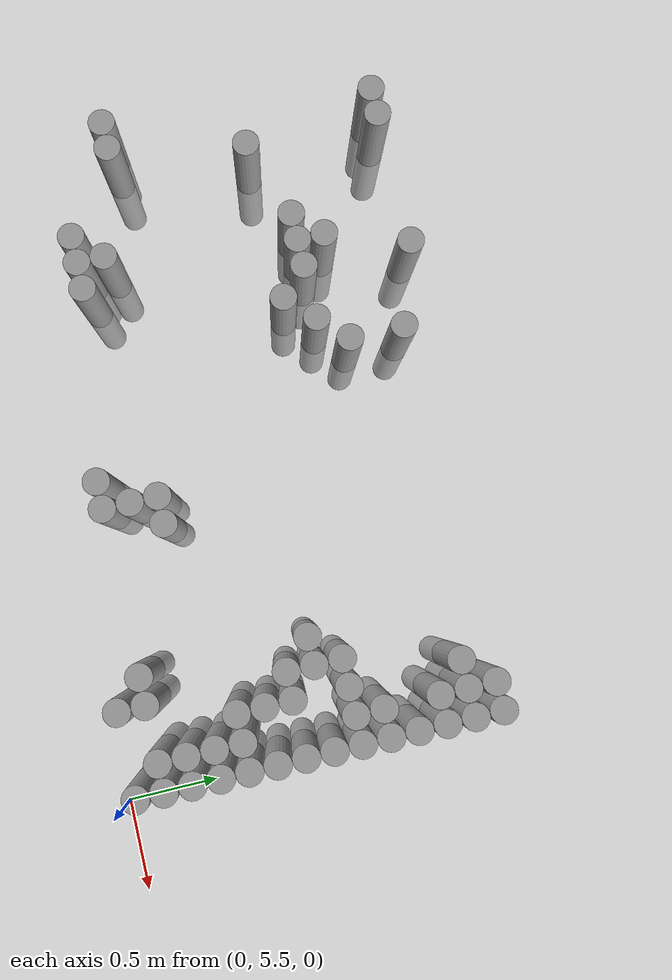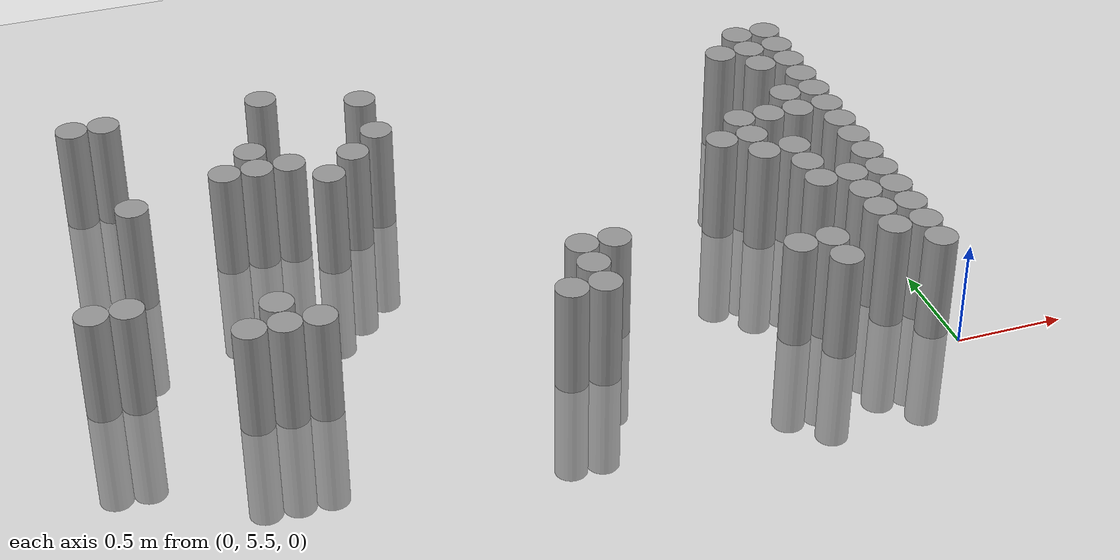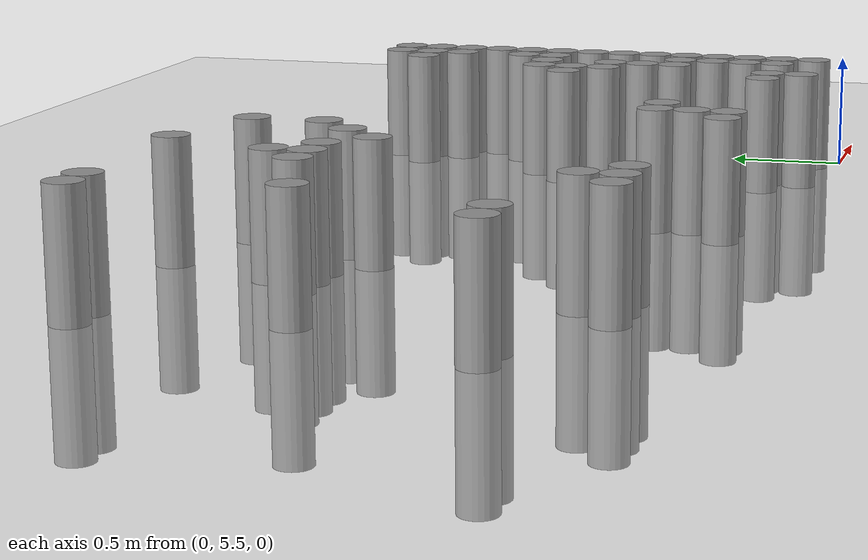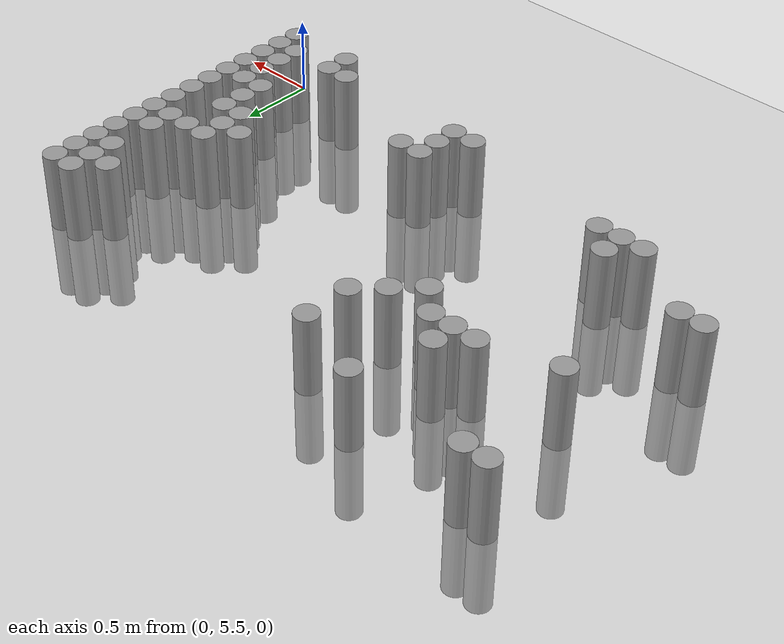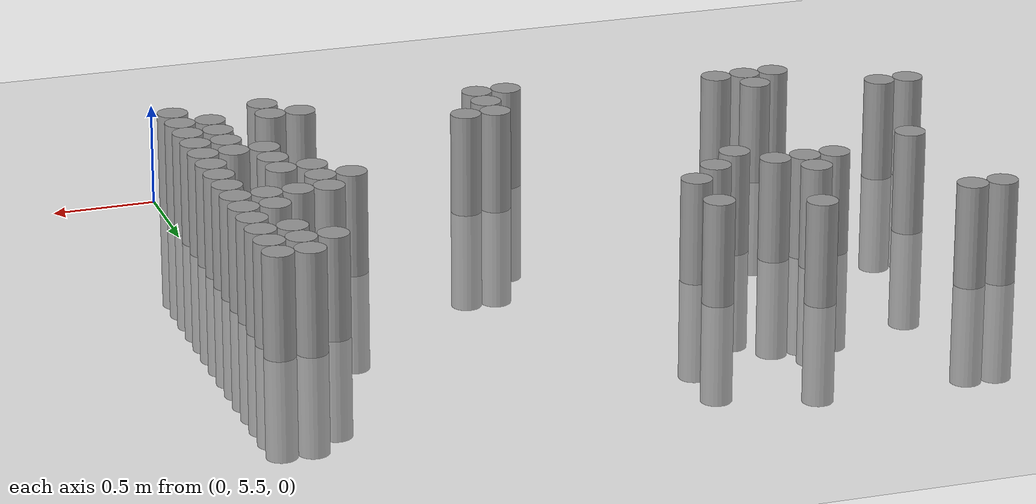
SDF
<sdf version="1.6">
 <world name="default">
  <model name="ground_plane">
   <static>1</static>
   <static>1</static>
   <link name="link">
    <collision name="collision">
     <geometry><plane><normal>0 0 1</normal><size>100 100</size></plane></geometry>
     <surface><friction><ode><mu>100</mu><mu2>50</mu2></ode></friction></surface>
    </collision>
    <visual name="visual">
     <cast_shadows>0</cast_shadows>
     <geometry><plane><normal>0 0 1</normal><size>100 100</size></plane></geometry>
     <material>
      <script><uri>file://media/materials/scripts/gazebo.material</uri><name>Gazebo/Grey</name></script>
     </material>
    </visual>
   </link>
  </model>
  <model name="unit_cylinder_161">
   <static>1</static>
   <pose>-3.675000 6.225000 0.000000 0.000000 0.000000 0.000000</pose>
   <link name="link">
    <inertial>
     <mass>1</mass>
     <inertia><ixx>0.145833</ixx><ixy>0</ixy><ixz>0</ixz><iyy>0.145833</iyy><iyz>0</iyz><izz>0.125</izz></inertia>
    </inertial>
    <collision name="collision">
     <geometry><cylinder><radius>0.075000</radius><length>1</length></cylinder></geometry>
    </collision>
    <visual name="visual">
     <geometry><cylinder><radius>0.075000</radius><length>1</length></cylinder></geometry>
     <material>
      <script><name>Gazebo/Grey</name><uri>file://media/materials/scripts/gazebo.material</uri></script>
     </material>
    </visual>
   </link>
  </model>
  <model name="unit_cylinder_166">
   <static>1</static>
   <pose>-3.525000 6.225000 0.000000 0.000000 0.000000 0.000000</pose>
   <link name="link">
    <inertial>
     <mass>1</mass>
     <inertia><ixx>0.145833</ixx><ixy>0</ixy><ixz>0</ixz><iyy>0.145833</iyy><iyz>0</iyz><izz>0.125</izz></inertia>
    </inertial>
    <collision name="collision">
     <geometry><cylinder><radius>0.075000</radius><length>1</length></cylinder></geometry>
    </collision>
    <visual name="visual">
     <geometry><cylinder><radius>0.075000</radius><length>1</length></cylinder></geometry>
     <material>
      <script><name>Gazebo/Grey</name><uri>file://media/materials/scripts/gazebo.material</uri></script>
     </material>
    </visual>
   </link>
  </model>
  <model name="unit_cylinder_167">
   <static>1</static>
   <pose>-3.525000 7.725000 0.000000 0.000000 0.000000 0.000000</pose>
   <link name="link">
    <inertial>
     <mass>1</mass>
     <inertia><ixx>0.145833</ixx><ixy>0</ixy><ixz>0</ixz><iyy>0.145833</iyy><iyz>0</iyz><izz>0.125</izz></inertia>
    </inertial>
    <collision name="collision">
     <geometry><cylinder><radius>0.075000</radius><length>1</length></cylinder></geometry>
    </collision>
    <visual name="visual">
     <geometry><cylinder><radius>0.075000</radius><length>1</length></cylinder></geometry>
     <material>
      <script><name>Gazebo/Grey</name><uri>file://media/materials/scripts/gazebo.material</uri></script>
     </material>
    </visual>
   </link>
  </model>
  <model name="unit_cylinder_171">
   <static>1</static>
   <pose>-3.375000 6.975000 0.000000 0.000000 0.000000 0.000000</pose>
   <link name="link">
    <inertial>
     <mass>1</mass>
     <inertia><ixx>0.145833</ixx><ixy>0</ixy><ixz>0</ixz><iyy>0.145833</iyy><iyz>0</iyz><izz>0.125</izz></inertia>
    </inertial>
    <collision name="collision">
     <geometry><cylinder><radius>0.075000</radius><length>1</length></cylinder></geometry>
    </collision>
    <visual name="visual">
     <geometry><cylinder><radius>0.075000</radius><length>1</length></cylinder></geometry>
     <material>
      <script><name>Gazebo/Grey</name><uri>file://media/materials/scripts/gazebo.material</uri></script>
     </material>
    </visual>
   </link>
  </model>
  <model name="unit_cylinder_172">
   <static>1</static>
   <pose>-3.375000 7.725000 0.000000 0.000000 0.000000 0.000000</pose>
   <link name="link">
    <inertial>
     <mass>1</mass>
     <inertia><ixx>0.145833</ixx><ixy>0</ixy><ixz>0</ixz><iyy>0.145833</iyy><iyz>0</iyz><izz>0.125</izz></inertia>
    </inertial>
    <collision name="collision">
     <geometry><cylinder><radius>0.075000</radius><length>1</length></cylinder></geometry>
    </collision>
    <visual name="visual">
     <geometry><cylinder><radius>0.075000</radius><length>1</length></cylinder></geometry>
     <material>
      <script><name>Gazebo/Grey</name><uri>file://media/materials/scripts/gazebo.material</uri></script>
     </material>
    </visual>
   </link>
  </model>
  <model name="unit_cylinder_180">
   <static>1</static>
   <pose>-3.075000 5.925000 0.000000 0.000000 0.000000 0.000000</pose>
   <link name="link">
    <inertial>
     <mass>1</mass>
     <inertia><ixx>0.145833</ixx><ixy>0</ixy><ixz>0</ixz><iyy>0.145833</iyy><iyz>0</iyz><izz>0.125</izz></inertia>
    </inertial>
    <collision name="collision">
     <geometry><cylinder><radius>0.075000</radius><length>1</length></cylinder></geometry>
    </collision>
    <visual name="visual">
     <geometry><cylinder><radius>0.075000</radius><length>1</length></cylinder></geometry>
     <material>
      <script><name>Gazebo/Grey</name><uri>file://media/materials/scripts/gazebo.material</uri></script>
     </material>
    </visual>
   </link>
  </model>
  <model name="unit_cylinder_184">
   <static>1</static>
   <pose>-2.925000 5.925000 0.000000 0.000000 0.000000 0.000000</pose>
   <link name="link">
    <inertial>
     <mass>1</mass>
     <inertia><ixx>0.145833</ixx><ixy>0</ixy><ixz>0</ixz><iyy>0.145833</iyy><iyz>0</iyz><izz>0.125</izz></inertia>
    </inertial>
    <collision name="collision">
     <geometry><cylinder><radius>0.075000</radius><length>1</length></cylinder></geometry>
    </collision>
    <visual name="visual">
     <geometry><cylinder><radius>0.075000</radius><length>1</length></cylinder></geometry>
     <material>
      <script><name>Gazebo/Grey</name><uri>file://media/materials/scripts/gazebo.material</uri></script>
     </material>
    </visual>
   </link>
  </model>
  <model name="unit_cylinder_185">
   <static>1</static>
   <pose>-2.925000 6.075000 0.000000 0.000000 0.000000 0.000000</pose>
   <link name="link">
    <inertial>
     <mass>1</mass>
     <inertia><ixx>0.145833</ixx><ixy>0</ixy><ixz>0</ixz><iyy>0.145833</iyy><iyz>0</iyz><izz>0.125</izz></inertia>
    </inertial>
    <collision name="collision">
     <geometry><cylinder><radius>0.075000</radius><length>1</length></cylinder></geometry>
    </collision>
    <visual name="visual">
     <geometry><cylinder><radius>0.075000</radius><length>1</length></cylinder></geometry>
     <material>
      <script><name>Gazebo/Grey</name><uri>file://media/materials/scripts/gazebo.material</uri></script>
     </material>
    </visual>
   </link>
  </model>
  <model name="unit_cylinder_186">
   <static>1</static>
   <pose>-2.925000 7.125000 0.000000 0.000000 0.000000 0.000000</pose>
   <link name="link">
    <inertial>
     <mass>1</mass>
     <inertia><ixx>0.145833</ixx><ixy>0</ixy><ixz>0</ixz><iyy>0.145833</iyy><iyz>0</iyz><izz>0.125</izz></inertia>
    </inertial>
    <collision name="collision">
     <geometry><cylinder><radius>0.075000</radius><length>1</length></cylinder></geometry>
    </collision>
    <visual name="visual">
     <geometry><cylinder><radius>0.075000</radius><length>1</length></cylinder></geometry>
     <material>
      <script><name>Gazebo/Grey</name><uri>file://media/materials/scripts/gazebo.material</uri></script>
     </material>
    </visual>
   </link>
  </model>
  <model name="unit_cylinder_191">
   <static>1</static>
   <pose>-2.775000 5.925000 0.000000 0.000000 0.000000 0.000000</pose>
   <link name="link">
    <inertial>
     <mass>1</mass>
     <inertia><ixx>0.145833</ixx><ixy>0</ixy><ixz>0</ixz><iyy>0.145833</iyy><iyz>0</iyz><izz>0.125</izz></inertia>
    </inertial>
    <collision name="collision">
     <geometry><cylinder><radius>0.075000</radius><length>1</length></cylinder></geometry>
    </collision>
    <visual name="visual">
     <geometry><cylinder><radius>0.075000</radius><length>1</length></cylinder></geometry>
     <material>
      <script><name>Gazebo/Grey</name><uri>file://media/materials/scripts/gazebo.material</uri></script>
     </material>
    </visual>
   </link>
  </model>
  <model name="unit_cylinder_192">
   <static>1</static>
   <pose>-2.775000 7.125000 0.000000 0.000000 0.000000 0.000000</pose>
   <link name="link">
    <inertial>
     <mass>1</mass>
     <inertia><ixx>0.145833</ixx><ixy>0</ixy><ixz>0</ixz><iyy>0.145833</iyy><iyz>0</iyz><izz>0.125</izz></inertia>
    </inertial>
    <collision name="collision">
     <geometry><cylinder><radius>0.075000</radius><length>1</length></cylinder></geometry>
    </collision>
    <visual name="visual">
     <geometry><cylinder><radius>0.075000</radius><length>1</length></cylinder></geometry>
     <material>
      <script><name>Gazebo/Grey</name><uri>file://media/materials/scripts/gazebo.material</uri></script>
     </material>
    </visual>
   </link>
  </model>
  <model name="unit_cylinder_193">
   <static>1</static>
   <pose>-2.775000 7.275000 0.000000 0.000000 0.000000 0.000000</pose>
   <link name="link">
    <inertial>
     <mass>1</mass>
     <inertia><ixx>0.145833</ixx><ixy>0</ixy><ixz>0</ixz><iyy>0.145833</iyy><iyz>0</iyz><izz>0.125</izz></inertia>
    </inertial>
    <collision name="collision">
     <geometry><cylinder><radius>0.075000</radius><length>1</length></cylinder></geometry>
    </collision>
    <visual name="visual">
     <geometry><cylinder><radius>0.075000</radius><length>1</length></cylinder></geometry>
     <material>
      <script><name>Gazebo/Grey</name><uri>file://media/materials/scripts/gazebo.material</uri></script>
     </material>
    </visual>
   </link>
  </model>
  <model name="unit_cylinder_196">
   <static>1</static>
   <pose>-2.625000 7.125000 0.000000 0.000000 0.000000 0.000000</pose>
   <link name="link">
    <inertial>
     <mass>1</mass>
     <inertia><ixx>0.145833</ixx><ixy>0</ixy><ixz>0</ixz><iyy>0.145833</iyy><iyz>0</iyz><izz>0.125</izz></inertia>
    </inertial>
    <collision name="collision">
     <geometry><cylinder><radius>0.075000</radius><length>1</length></cylinder></geometry>
    </collision>
    <visual name="visual">
     <geometry><cylinder><radius>0.075000</radius><length>1</length></cylinder></geometry>
     <material>
      <script><name>Gazebo/Grey</name><uri>file://media/materials/scripts/gazebo.material</uri></script>
     </material>
    </visual>
   </link>
  </model>
  <model name="unit_cylinder_197">
   <static>1</static>
   <pose>-2.625000 7.725000 0.000000 0.000000 0.000000 0.000000</pose>
   <link name="link">
    <inertial>
     <mass>1</mass>
     <inertia><ixx>0.145833</ixx><ixy>0</ixy><ixz>0</ixz><iyy>0.145833</iyy><iyz>0</iyz><izz>0.125</izz></inertia>
    </inertial>
    <collision name="collision">
     <geometry><cylinder><radius>0.075000</radius><length>1</length></cylinder></geometry>
    </collision>
    <visual name="visual">
     <geometry><cylinder><radius>0.075000</radius><length>1</length></cylinder></geometry>
     <material>
      <script><name>Gazebo/Grey</name><uri>file://media/materials/scripts/gazebo.material</uri></script>
     </material>
    </visual>
   </link>
  </model>
  <model name="unit_cylinder_202">
   <static>1</static>
   <pose>-2.475000 6.975000 0.000000 0.000000 0.000000 0.000000</pose>
   <link name="link">
    <inertial>
     <mass>1</mass>
     <inertia><ixx>0.145833</ixx><ixy>0</ixy><ixz>0</ixz><iyy>0.145833</iyy><iyz>0</iyz><izz>0.125</izz></inertia>
    </inertial>
    <collision name="collision">
     <geometry><cylinder><radius>0.075000</radius><length>1</length></cylinder></geometry>
    </collision>
    <visual name="visual">
     <geometry><cylinder><radius>0.075000</radius><length>1</length></cylinder></geometry>
     <material>
      <script><name>Gazebo/Grey</name><uri>file://media/materials/scripts/gazebo.material</uri></script>
     </material>
    </visual>
   </link>
  </model>
  <model name="unit_cylinder_209">
   <static>1</static>
   <pose>-2.325000 7.125000 0.000000 0.000000 0.000000 0.000000</pose>
   <link name="link">
    <inertial>
     <mass>1</mass>
     <inertia><ixx>0.145833</ixx><ixy>0</ixy><ixz>0</ixz><iyy>0.145833</iyy><iyz>0</iyz><izz>0.125</izz></inertia>
    </inertial>
    <collision name="collision">
     <geometry><cylinder><radius>0.075000</radius><length>1</length></cylinder></geometry>
    </collision>
    <visual name="visual">
     <geometry><cylinder><radius>0.075000</radius><length>1</length></cylinder></geometry>
     <material>
      <script><name>Gazebo/Grey</name><uri>file://media/materials/scripts/gazebo.material</uri></script>
     </material>
    </visual>
   </link>
  </model>
  <model name="unit_cylinder_214">
   <static>1</static>
   <pose>-2.175000 7.275000 0.000000 0.000000 0.000000 0.000000</pose>
   <link name="link">
    <inertial>
     <mass>1</mass>
     <inertia><ixx>0.145833</ixx><ixy>0</ixy><ixz>0</ixz><iyy>0.145833</iyy><iyz>0</iyz><izz>0.125</izz></inertia>
    </inertial>
    <collision name="collision">
     <geometry><cylinder><radius>0.075000</radius><length>1</length></cylinder></geometry>
    </collision>
    <visual name="visual">
     <geometry><cylinder><radius>0.075000</radius><length>1</length></cylinder></geometry>
     <material>
      <script><name>Gazebo/Grey</name><uri>file://media/materials/scripts/gazebo.material</uri></script>
     </material>
    </visual>
   </link>
  </model>
  <model name="unit_cylinder_215">
   <static>1</static>
   <pose>-2.175000 7.575000 0.000000 0.000000 0.000000 0.000000</pose>
   <link name="link">
    <inertial>
     <mass>1</mass>
     <inertia><ixx>0.145833</ixx><ixy>0</ixy><ixz>0</ixz><iyy>0.145833</iyy><iyz>0</iyz><izz>0.125</izz></inertia>
    </inertial>
    <collision name="collision">
     <geometry><cylinder><radius>0.075000</radius><length>1</length></cylinder></geometry>
    </collision>
    <visual name="visual">
     <geometry><cylinder><radius>0.075000</radius><length>1</length></cylinder></geometry>
     <material>
      <script><name>Gazebo/Grey</name><uri>file://media/materials/scripts/gazebo.material</uri></script>
     </material>
    </visual>
   </link>
  </model>
  <model name="unit_cylinder_222">
   <static>1</static>
   <pose>-1.725000 5.775000 0.000000 0.000000 0.000000 0.000000</pose>
   <link name="link">
    <inertial>
     <mass>1</mass>
     <inertia><ixx>0.145833</ixx><ixy>0</ixy><ixz>0</ixz><iyy>0.145833</iyy><iyz>0</iyz><izz>0.125</izz></inertia>
    </inertial>
    <collision name="collision">
     <geometry><cylinder><radius>0.075000</radius><length>1</length></cylinder></geometry>
    </collision>
    <visual name="visual">
     <geometry><cylinder><radius>0.075000</radius><length>1</length></cylinder></geometry>
     <material>
      <script><name>Gazebo/Grey</name><uri>file://media/materials/scripts/gazebo.material</uri></script>
     </material>
    </visual>
   </link>
  </model>
  <model name="unit_cylinder_223">
   <static>1</static>
   <pose>-1.575000 5.775000 0.000000 0.000000 0.000000 0.000000</pose>
   <link name="link">
    <inertial>
     <mass>1</mass>
     <inertia><ixx>0.145833</ixx><ixy>0</ixy><ixz>0</ixz><iyy>0.145833</iyy><iyz>0</iyz><izz>0.125</izz></inertia>
    </inertial>
    <collision name="collision">
     <geometry><cylinder><radius>0.075000</radius><length>1</length></cylinder></geometry>
    </collision>
    <visual name="visual">
     <geometry><cylinder><radius>0.075000</radius><length>1</length></cylinder></geometry>
     <material>
      <script><name>Gazebo/Grey</name><uri>file://media/materials/scripts/gazebo.material</uri></script>
     </material>
    </visual>
   </link>
  </model>
  <model name="unit_cylinder_224">
   <static>1</static>
   <pose>-1.575000 5.925000 0.000000 0.000000 0.000000 0.000000</pose>
   <link name="link">
    <inertial>
     <mass>1</mass>
     <inertia><ixx>0.145833</ixx><ixy>0</ixy><ixz>0</ixz><iyy>0.145833</iyy><iyz>0</iyz><izz>0.125</izz></inertia>
    </inertial>
    <collision name="collision">
     <geometry><cylinder><radius>0.075000</radius><length>1</length></cylinder></geometry>
    </collision>
    <visual name="visual">
     <geometry><cylinder><radius>0.075000</radius><length>1</length></cylinder></geometry>
     <material>
      <script><name>Gazebo/Grey</name><uri>file://media/materials/scripts/gazebo.material</uri></script>
     </material>
    </visual>
   </link>
  </model>
  <model name="unit_cylinder_225">
   <static>1</static>
   <pose>-1.575000 6.075000 0.000000 0.000000 0.000000 0.000000</pose>
   <link name="link">
    <inertial>
     <mass>1</mass>
     <inertia><ixx>0.145833</ixx><ixy>0</ixy><ixz>0</ixz><iyy>0.145833</iyy><iyz>0</iyz><izz>0.125</izz></inertia>
    </inertial>
    <collision name="collision">
     <geometry><cylinder><radius>0.075000</radius><length>1</length></cylinder></geometry>
    </collision>
    <visual name="visual">
     <geometry><cylinder><radius>0.075000</radius><length>1</length></cylinder></geometry>
     <material>
      <script><name>Gazebo/Grey</name><uri>file://media/materials/scripts/gazebo.material</uri></script>
     </material>
    </visual>
   </link>
  </model>
  <model name="unit_cylinder_227">
   <static>1</static>
   <pose>-1.425000 6.075000 0.000000 0.000000 0.000000 0.000000</pose>
   <link name="link">
    <inertial>
     <mass>1</mass>
     <inertia><ixx>0.145833</ixx><ixy>0</ixy><ixz>0</ixz><iyy>0.145833</iyy><iyz>0</iyz><izz>0.125</izz></inertia>
    </inertial>
    <collision name="collision">
     <geometry><cylinder><radius>0.075000</radius><length>1</length></cylinder></geometry>
    </collision>
    <visual name="visual">
     <geometry><cylinder><radius>0.075000</radius><length>1</length></cylinder></geometry>
     <material>
      <script><name>Gazebo/Grey</name><uri>file://media/materials/scripts/gazebo.material</uri></script>
     </material>
    </visual>
   </link>
  </model>
  <model name="unit_cylinder_234">
   <static>1</static>
   <pose>-0.675000 5.775000 0.000000 0.000000 0.000000 0.000000</pose>
   <link name="link">
    <inertial>
     <mass>1</mass>
     <inertia><ixx>0.145833</ixx><ixy>0</ixy><ixz>0</ixz><iyy>0.145833</iyy><iyz>0</iyz><izz>0.125</izz></inertia>
    </inertial>
    <collision name="collision">
     <geometry><cylinder><radius>0.075000</radius><length>1</length></cylinder></geometry>
    </collision>
    <visual name="visual">
     <geometry><cylinder><radius>0.075000</radius><length>1</length></cylinder></geometry>
     <material>
      <script><name>Gazebo/Grey</name><uri>file://media/materials/scripts/gazebo.material</uri></script>
     </material>
    </visual>
   </link>
  </model>
  <model name="unit_cylinder_235">
   <static>1</static>
   <pose>-0.675000 6.675000 0.000000 0.000000 0.000000 0.000000</pose>
   <link name="link">
    <inertial>
     <mass>1</mass>
     <inertia><ixx>0.145833</ixx><ixy>0</ixy><ixz>0</ixz><iyy>0.145833</iyy><iyz>0</iyz><izz>0.125</izz></inertia>
    </inertial>
    <collision name="collision">
     <geometry><cylinder><radius>0.075000</radius><length>1</length></cylinder></geometry>
    </collision>
    <visual name="visual">
     <geometry><cylinder><radius>0.075000</radius><length>1</length></cylinder></geometry>
     <material>
      <script><name>Gazebo/Grey</name><uri>file://media/materials/scripts/gazebo.material</uri></script>
     </material>
    </visual>
   </link>
  </model>
  <model name="unit_cylinder_236">
   <static>1</static>
   <pose>-0.525000 5.625000 0.000000 0.000000 0.000000 0.000000</pose>
   <link name="link">
    <inertial>
     <mass>1</mass>
     <inertia><ixx>0.145833</ixx><ixy>0</ixy><ixz>0</ixz><iyy>0.145833</iyy><iyz>0</iyz><izz>0.125</izz></inertia>
    </inertial>
    <collision name="collision">
     <geometry><cylinder><radius>0.075000</radius><length>1</length></cylinder></geometry>
    </collision>
    <visual name="visual">
     <geometry><cylinder><radius>0.075000</radius><length>1</length></cylinder></geometry>
     <material>
      <script><name>Gazebo/Grey</name><uri>file://media/materials/scripts/gazebo.material</uri></script>
     </material>
    </visual>
   </link>
  </model>
  <model name="unit_cylinder_237">
   <static>1</static>
   <pose>-0.525000 5.775000 0.000000 0.000000 0.000000 0.000000</pose>
   <link name="link">
    <inertial>
     <mass>1</mass>
     <inertia><ixx>0.145833</ixx><ixy>0</ixy><ixz>0</ixz><iyy>0.145833</iyy><iyz>0</iyz><izz>0.125</izz></inertia>
    </inertial>
    <collision name="collision">
     <geometry><cylinder><radius>0.075000</radius><length>1</length></cylinder></geometry>
    </collision>
    <visual name="visual">
     <geometry><cylinder><radius>0.075000</radius><length>1</length></cylinder></geometry>
     <material>
      <script><name>Gazebo/Grey</name><uri>file://media/materials/scripts/gazebo.material</uri></script>
     </material>
    </visual>
   </link>
  </model>
  <model name="unit_cylinder_238">
   <static>1</static>
   <pose>-0.525000 6.525000 0.000000 0.000000 0.000000 0.000000</pose>
   <link name="link">
    <inertial>
     <mass>1</mass>
     <inertia><ixx>0.145833</ixx><ixy>0</ixy><ixz>0</ixz><iyy>0.145833</iyy><iyz>0</iyz><izz>0.125</izz></inertia>
    </inertial>
    <collision name="collision">
     <geometry><cylinder><radius>0.075000</radius><length>1</length></cylinder></geometry>
    </collision>
    <visual name="visual">
     <geometry><cylinder><radius>0.075000</radius><length>1</length></cylinder></geometry>
     <material>
      <script><name>Gazebo/Grey</name><uri>file://media/materials/scripts/gazebo.material</uri></script>
     </material>
    </visual>
   </link>
  </model>
  <model name="unit_cylinder_239">
   <static>1</static>
   <pose>-0.525000 6.675000 0.000000 0.000000 0.000000 0.000000</pose>
   <link name="link">
    <inertial>
     <mass>1</mass>
     <inertia><ixx>0.145833</ixx><ixy>0</ixy><ixz>0</ixz><iyy>0.145833</iyy><iyz>0</iyz><izz>0.125</izz></inertia>
    </inertial>
    <collision name="collision">
     <geometry><cylinder><radius>0.075000</radius><length>1</length></cylinder></geometry>
    </collision>
    <visual name="visual">
     <geometry><cylinder><radius>0.075000</radius><length>1</length></cylinder></geometry>
     <material>
      <script><name>Gazebo/Grey</name><uri>file://media/materials/scripts/gazebo.material</uri></script>
     </material>
    </visual>
   </link>
  </model>
  <model name="unit_cylinder_240">
   <static>1</static>
   <pose>-0.525000 6.825000 0.000000 0.000000 0.000000 0.000000</pose>
   <link name="link">
    <inertial>
     <mass>1</mass>
     <inertia><ixx>0.145833</ixx><ixy>0</ixy><ixz>0</ixz><iyy>0.145833</iyy><iyz>0</iyz><izz>0.125</izz></inertia>
    </inertial>
    <collision name="collision">
     <geometry><cylinder><radius>0.075000</radius><length>1</length></cylinder></geometry>
    </collision>
    <visual name="visual">
     <geometry><cylinder><radius>0.075000</radius><length>1</length></cylinder></geometry>
     <material>
      <script><name>Gazebo/Grey</name><uri>file://media/materials/scripts/gazebo.material</uri></script>
     </material>
    </visual>
   </link>
  </model>
  <model name="unit_cylinder_242">
   <static>1</static>
   <pose>-0.375000 6.225000 0.000000 0.000000 0.000000 0.000000</pose>
   <link name="link">
    <inertial>
     <mass>1</mass>
     <inertia><ixx>0.145833</ixx><ixy>0</ixy><ixz>0</ixz><iyy>0.145833</iyy><iyz>0</iyz><izz>0.125</izz></inertia>
    </inertial>
    <collision name="collision">
     <geometry><cylinder><radius>0.075000</radius><length>1</length></cylinder></geometry>
    </collision>
    <visual name="visual">
     <geometry><cylinder><radius>0.075000</radius><length>1</length></cylinder></geometry>
     <material>
      <script><name>Gazebo/Grey</name><uri>file://media/materials/scripts/gazebo.material</uri></script>
     </material>
    </visual>
   </link>
  </model>
  <model name="unit_cylinder_243">
   <static>1</static>
   <pose>-0.375000 6.375000 0.000000 0.000000 0.000000 0.000000</pose>
   <link name="link">
    <inertial>
     <mass>1</mass>
     <inertia><ixx>0.145833</ixx><ixy>0</ixy><ixz>0</ixz><iyy>0.145833</iyy><iyz>0</iyz><izz>0.125</izz></inertia>
    </inertial>
    <collision name="collision">
     <geometry><cylinder><radius>0.075000</radius><length>1</length></cylinder></geometry>
    </collision>
    <visual name="visual">
     <geometry><cylinder><radius>0.075000</radius><length>1</length></cylinder></geometry>
     <material>
      <script><name>Gazebo/Grey</name><uri>file://media/materials/scripts/gazebo.material</uri></script>
     </material>
    </visual>
   </link>
  </model>
  <model name="unit_cylinder_244">
   <static>1</static>
   <pose>-0.375000 6.525000 0.000000 0.000000 0.000000 0.000000</pose>
   <link name="link">
    <inertial>
     <mass>1</mass>
     <inertia><ixx>0.145833</ixx><ixy>0</ixy><ixz>0</ixz><iyy>0.145833</iyy><iyz>0</iyz><izz>0.125</izz></inertia>
    </inertial>
    <collision name="collision">
     <geometry><cylinder><radius>0.075000</radius><length>1</length></cylinder></geometry>
    </collision>
    <visual name="visual">
     <geometry><cylinder><radius>0.075000</radius><length>1</length></cylinder></geometry>
     <material>
      <script><name>Gazebo/Grey</name><uri>file://media/materials/scripts/gazebo.material</uri></script>
     </material>
    </visual>
   </link>
  </model>
  <model name="unit_cylinder_245">
   <static>1</static>
   <pose>-0.375000 6.825000 0.000000 0.000000 0.000000 0.000000</pose>
   <link name="link">
    <inertial>
     <mass>1</mass>
     <inertia><ixx>0.145833</ixx><ixy>0</ixy><ixz>0</ixz><iyy>0.145833</iyy><iyz>0</iyz><izz>0.125</izz></inertia>
    </inertial>
    <collision name="collision">
     <geometry><cylinder><radius>0.075000</radius><length>1</length></cylinder></geometry>
    </collision>
    <visual name="visual">
     <geometry><cylinder><radius>0.075000</radius><length>1</length></cylinder></geometry>
     <material>
      <script><name>Gazebo/Grey</name><uri>file://media/materials/scripts/gazebo.material</uri></script>
     </material>
    </visual>
   </link>
  </model>
  <model name="unit_cylinder_246">
   <static>1</static>
   <pose>-0.375000 7.425000 0.000000 0.000000 0.000000 0.000000</pose>
   <link name="link">
    <inertial>
     <mass>1</mass>
     <inertia><ixx>0.145833</ixx><ixy>0</ixy><ixz>0</ixz><iyy>0.145833</iyy><iyz>0</iyz><izz>0.125</izz></inertia>
    </inertial>
    <collision name="collision">
     <geometry><cylinder><radius>0.075000</radius><length>1</length></cylinder></geometry>
    </collision>
    <visual name="visual">
     <geometry><cylinder><radius>0.075000</radius><length>1</length></cylinder></geometry>
     <material>
      <script><name>Gazebo/Grey</name><uri>file://media/materials/scripts/gazebo.material</uri></script>
     </material>
    </visual>
   </link>
  </model>
  <model name="unit_cylinder_249">
   <static>1</static>
   <pose>-0.225000 5.775000 0.000000 0.000000 0.000000 0.000000</pose>
   <link name="link">
    <inertial>
     <mass>1</mass>
     <inertia><ixx>0.145833</ixx><ixy>0</ixy><ixz>0</ixz><iyy>0.145833</iyy><iyz>0</iyz><izz>0.125</izz></inertia>
    </inertial>
    <collision name="collision">
     <geometry><cylinder><radius>0.075000</radius><length>1</length></cylinder></geometry>
    </collision>
    <visual name="visual">
     <geometry><cylinder><radius>0.075000</radius><length>1</length></cylinder></geometry>
     <material>
      <script><name>Gazebo/Grey</name><uri>file://media/materials/scripts/gazebo.material</uri></script>
     </material>
    </visual>
   </link>
  </model>
  <model name="unit_cylinder_250">
   <static>1</static>
   <pose>-0.225000 5.925000 0.000000 0.000000 0.000000 0.000000</pose>
   <link name="link">
    <inertial>
     <mass>1</mass>
     <inertia><ixx>0.145833</ixx><ixy>0</ixy><ixz>0</ixz><iyy>0.145833</iyy><iyz>0</iyz><izz>0.125</izz></inertia>
    </inertial>
    <collision name="collision">
     <geometry><cylinder><radius>0.075000</radius><length>1</length></cylinder></geometry>
    </collision>
    <visual name="visual">
     <geometry><cylinder><radius>0.075000</radius><length>1</length></cylinder></geometry>
     <material>
      <script><name>Gazebo/Grey</name><uri>file://media/materials/scripts/gazebo.material</uri></script>
     </material>
    </visual>
   </link>
  </model>
  <model name="unit_cylinder_251">
   <static>1</static>
   <pose>-0.225000 6.075000 0.000000 0.000000 0.000000 0.000000</pose>
   <link name="link">
    <inertial>
     <mass>1</mass>
     <inertia><ixx>0.145833</ixx><ixy>0</ixy><ixz>0</ixz><iyy>0.145833</iyy><iyz>0</iyz><izz>0.125</izz></inertia>
    </inertial>
    <collision name="collision">
     <geometry><cylinder><radius>0.075000</radius><length>1</length></cylinder></geometry>
    </collision>
    <visual name="visual">
     <geometry><cylinder><radius>0.075000</radius><length>1</length></cylinder></geometry>
     <material>
      <script><name>Gazebo/Grey</name><uri>file://media/materials/scripts/gazebo.material</uri></script>
     </material>
    </visual>
   </link>
  </model>
  <model name="unit_cylinder_252">
   <static>1</static>
   <pose>-0.225000 6.225000 0.000000 0.000000 0.000000 0.000000</pose>
   <link name="link">
    <inertial>
     <mass>1</mass>
     <inertia><ixx>0.145833</ixx><ixy>0</ixy><ixz>0</ixz><iyy>0.145833</iyy><iyz>0</iyz><izz>0.125</izz></inertia>
    </inertial>
    <collision name="collision">
     <geometry><cylinder><radius>0.075000</radius><length>1</length></cylinder></geometry>
    </collision>
    <visual name="visual">
     <geometry><cylinder><radius>0.075000</radius><length>1</length></cylinder></geometry>
     <material>
      <script><name>Gazebo/Grey</name><uri>file://media/materials/scripts/gazebo.material</uri></script>
     </material>
    </visual>
   </link>
  </model>
  <model name="unit_cylinder_253">
   <static>1</static>
   <pose>-0.225000 6.825000 0.000000 0.000000 0.000000 0.000000</pose>
   <link name="link">
    <inertial>
     <mass>1</mass>
     <inertia><ixx>0.145833</ixx><ixy>0</ixy><ixz>0</ixz><iyy>0.145833</iyy><iyz>0</iyz><izz>0.125</izz></inertia>
    </inertial>
    <collision name="collision">
     <geometry><cylinder><radius>0.075000</radius><length>1</length></cylinder></geometry>
    </collision>
    <visual name="visual">
     <geometry><cylinder><radius>0.075000</radius><length>1</length></cylinder></geometry>
     <material>
      <script><name>Gazebo/Grey</name><uri>file://media/materials/scripts/gazebo.material</uri></script>
     </material>
    </visual>
   </link>
  </model>
  <model name="unit_cylinder_254">
   <static>1</static>
   <pose>-0.225000 6.975000 0.000000 0.000000 0.000000 0.000000</pose>
   <link name="link">
    <inertial>
     <mass>1</mass>
     <inertia><ixx>0.145833</ixx><ixy>0</ixy><ixz>0</ixz><iyy>0.145833</iyy><iyz>0</iyz><izz>0.125</izz></inertia>
    </inertial>
    <collision name="collision">
     <geometry><cylinder><radius>0.075000</radius><length>1</length></cylinder></geometry>
    </collision>
    <visual name="visual">
     <geometry><cylinder><radius>0.075000</radius><length>1</length></cylinder></geometry>
     <material>
      <script><name>Gazebo/Grey</name><uri>file://media/materials/scripts/gazebo.material</uri></script>
     </material>
    </visual>
   </link>
  </model>
  <model name="unit_cylinder_255">
   <static>1</static>
   <pose>-0.225000 7.275000 0.000000 0.000000 0.000000 0.000000</pose>
   <link name="link">
    <inertial>
     <mass>1</mass>
     <inertia><ixx>0.145833</ixx><ixy>0</ixy><ixz>0</ixz><iyy>0.145833</iyy><iyz>0</iyz><izz>0.125</izz></inertia>
    </inertial>
    <collision name="collision">
     <geometry><cylinder><radius>0.075000</radius><length>1</length></cylinder></geometry>
    </collision>
    <visual name="visual">
     <geometry><cylinder><radius>0.075000</radius><length>1</length></cylinder></geometry>
     <material>
      <script><name>Gazebo/Grey</name><uri>file://media/materials/scripts/gazebo.material</uri></script>
     </material>
    </visual>
   </link>
  </model>
  <model name="unit_cylinder_256">
   <static>1</static>
   <pose>-0.225000 7.425000 0.000000 0.000000 0.000000 0.000000</pose>
   <link name="link">
    <inertial>
     <mass>1</mass>
     <inertia><ixx>0.145833</ixx><ixy>0</ixy><ixz>0</ixz><iyy>0.145833</iyy><iyz>0</iyz><izz>0.125</izz></inertia>
    </inertial>
    <collision name="collision">
     <geometry><cylinder><radius>0.075000</radius><length>1</length></cylinder></geometry>
    </collision>
    <visual name="visual">
     <geometry><cylinder><radius>0.075000</radius><length>1</length></cylinder></geometry>
     <material>
      <script><name>Gazebo/Grey</name><uri>file://media/materials/scripts/gazebo.material</uri></script>
     </material>
    </visual>
   </link>
  </model>
  <model name="unit_cylinder_257">
   <static>1</static>
   <pose>-0.225000 7.575000 0.000000 0.000000 0.000000 0.000000</pose>
   <link name="link">
    <inertial>
     <mass>1</mass>
     <inertia><ixx>0.145833</ixx><ixy>0</ixy><ixz>0</ixz><iyy>0.145833</iyy><iyz>0</iyz><izz>0.125</izz></inertia>
    </inertial>
    <collision name="collision">
     <geometry><cylinder><radius>0.075000</radius><length>1</length></cylinder></geometry>
    </collision>
    <visual name="visual">
     <geometry><cylinder><radius>0.075000</radius><length>1</length></cylinder></geometry>
     <material>
      <script><name>Gazebo/Grey</name><uri>file://media/materials/scripts/gazebo.material</uri></script>
     </material>
    </visual>
   </link>
  </model>
  <model name="unit_cylinder_263">
   <static>1</static>
   <pose>-0.075000 5.625000 0.000000 0.000000 0.000000 0.000000</pose>
   <link name="link">
    <inertial>
     <mass>1</mass>
     <inertia><ixx>0.145833</ixx><ixy>0</ixy><ixz>0</ixz><iyy>0.145833</iyy><iyz>0</iyz><izz>0.125</izz></inertia>
    </inertial>
    <collision name="collision">
     <geometry><cylinder><radius>0.075000</radius><length>1</length></cylinder></geometry>
    </collision>
    <visual name="visual">
     <geometry><cylinder><radius>0.075000</radius><length>1</length></cylinder></geometry>
     <material>
      <script><name>Gazebo/Grey</name><uri>file://media/materials/scripts/gazebo.material</uri></script>
     </material>
    </visual>
   </link>
  </model>
  <model name="unit_cylinder_264">
   <static>1</static>
   <pose>-0.075000 5.775000 0.000000 0.000000 0.000000 0.000000</pose>
   <link name="link">
    <inertial>
     <mass>1</mass>
     <inertia><ixx>0.145833</ixx><ixy>0</ixy><ixz>0</ixz><iyy>0.145833</iyy><iyz>0</iyz><izz>0.125</izz></inertia>
    </inertial>
    <collision name="collision">
     <geometry><cylinder><radius>0.075000</radius><length>1</length></cylinder></geometry>
    </collision>
    <visual name="visual">
     <geometry><cylinder><radius>0.075000</radius><length>1</length></cylinder></geometry>
     <material>
      <script><name>Gazebo/Grey</name><uri>file://media/materials/scripts/gazebo.material</uri></script>
     </material>
    </visual>
   </link>
  </model>
  <model name="unit_cylinder_265">
   <static>1</static>
   <pose>-0.075000 5.925000 0.000000 0.000000 0.000000 0.000000</pose>
   <link name="link">
    <inertial>
     <mass>1</mass>
     <inertia><ixx>0.145833</ixx><ixy>0</ixy><ixz>0</ixz><iyy>0.145833</iyy><iyz>0</iyz><izz>0.125</izz></inertia>
    </inertial>
    <collision name="collision">
     <geometry><cylinder><radius>0.075000</radius><length>1</length></cylinder></geometry>
    </collision>
    <visual name="visual">
     <geometry><cylinder><radius>0.075000</radius><length>1</length></cylinder></geometry>
     <material>
      <script><name>Gazebo/Grey</name><uri>file://media/materials/scripts/gazebo.material</uri></script>
     </material>
    </visual>
   </link>
  </model>
  <model name="unit_cylinder_266">
   <static>1</static>
   <pose>-0.075000 6.075000 0.000000 0.000000 0.000000 0.000000</pose>
   <link name="link">
    <inertial>
     <mass>1</mass>
     <inertia><ixx>0.145833</ixx><ixy>0</ixy><ixz>0</ixz><iyy>0.145833</iyy><iyz>0</iyz><izz>0.125</izz></inertia>
    </inertial>
    <collision name="collision">
     <geometry><cylinder><radius>0.075000</radius><length>1</length></cylinder></geometry>
    </collision>
    <visual name="visual">
     <geometry><cylinder><radius>0.075000</radius><length>1</length></cylinder></geometry>
     <material>
      <script><name>Gazebo/Grey</name><uri>file://media/materials/scripts/gazebo.material</uri></script>
     </material>
    </visual>
   </link>
  </model>
  <model name="unit_cylinder_267">
   <static>1</static>
   <pose>-0.075000 6.225000 0.000000 0.000000 0.000000 0.000000</pose>
   <link name="link">
    <inertial>
     <mass>1</mass>
     <inertia><ixx>0.145833</ixx><ixy>0</ixy><ixz>0</ixz><iyy>0.145833</iyy><iyz>0</iyz><izz>0.125</izz></inertia>
    </inertial>
    <collision name="collision">
     <geometry><cylinder><radius>0.075000</radius><length>1</length></cylinder></geometry>
    </collision>
    <visual name="visual">
     <geometry><cylinder><radius>0.075000</radius><length>1</length></cylinder></geometry>
     <material>
      <script><name>Gazebo/Grey</name><uri>file://media/materials/scripts/gazebo.material</uri></script>
     </material>
    </visual>
   </link>
  </model>
  <model name="unit_cylinder_268">
   <static>1</static>
   <pose>-0.075000 6.375000 0.000000 0.000000 0.000000 0.000000</pose>
   <link name="link">
    <inertial>
     <mass>1</mass>
     <inertia><ixx>0.145833</ixx><ixy>0</ixy><ixz>0</ixz><iyy>0.145833</iyy><iyz>0</iyz><izz>0.125</izz></inertia>
    </inertial>
    <collision name="collision">
     <geometry><cylinder><radius>0.075000</radius><length>1</length></cylinder></geometry>
    </collision>
    <visual name="visual">
     <geometry><cylinder><radius>0.075000</radius><length>1</length></cylinder></geometry>
     <material>
      <script><name>Gazebo/Grey</name><uri>file://media/materials/scripts/gazebo.material</uri></script>
     </material>
    </visual>
   </link>
  </model>
  <model name="unit_cylinder_269">
   <static>1</static>
   <pose>-0.075000 6.525000 0.000000 0.000000 0.000000 0.000000</pose>
   <link name="link">
    <inertial>
     <mass>1</mass>
     <inertia><ixx>0.145833</ixx><ixy>0</ixy><ixz>0</ixz><iyy>0.145833</iyy><iyz>0</iyz><izz>0.125</izz></inertia>
    </inertial>
    <collision name="collision">
     <geometry><cylinder><radius>0.075000</radius><length>1</length></cylinder></geometry>
    </collision>
    <visual name="visual">
     <geometry><cylinder><radius>0.075000</radius><length>1</length></cylinder></geometry>
     <material>
      <script><name>Gazebo/Grey</name><uri>file://media/materials/scripts/gazebo.material</uri></script>
     </material>
    </visual>
   </link>
  </model>
  <model name="unit_cylinder_270">
   <static>1</static>
   <pose>-0.075000 6.675000 0.000000 0.000000 0.000000 0.000000</pose>
   <link name="link">
    <inertial>
     <mass>1</mass>
     <inertia><ixx>0.145833</ixx><ixy>0</ixy><ixz>0</ixz><iyy>0.145833</iyy><iyz>0</iyz><izz>0.125</izz></inertia>
    </inertial>
    <collision name="collision">
     <geometry><cylinder><radius>0.075000</radius><length>1</length></cylinder></geometry>
    </collision>
    <visual name="visual">
     <geometry><cylinder><radius>0.075000</radius><length>1</length></cylinder></geometry>
     <material>
      <script><name>Gazebo/Grey</name><uri>file://media/materials/scripts/gazebo.material</uri></script>
     </material>
    </visual>
   </link>
  </model>
  <model name="unit_cylinder_271">
   <static>1</static>
   <pose>-0.075000 6.825000 0.000000 0.000000 0.000000 0.000000</pose>
   <link name="link">
    <inertial>
     <mass>1</mass>
     <inertia><ixx>0.145833</ixx><ixy>0</ixy><ixz>0</ixz><iyy>0.145833</iyy><iyz>0</iyz><izz>0.125</izz></inertia>
    </inertial>
    <collision name="collision">
     <geometry><cylinder><radius>0.075000</radius><length>1</length></cylinder></geometry>
    </collision>
    <visual name="visual">
     <geometry><cylinder><radius>0.075000</radius><length>1</length></cylinder></geometry>
     <material>
      <script><name>Gazebo/Grey</name><uri>file://media/materials/scripts/gazebo.material</uri></script>
     </material>
    </visual>
   </link>
  </model>
  <model name="unit_cylinder_272">
   <static>1</static>
   <pose>-0.075000 6.975000 0.000000 0.000000 0.000000 0.000000</pose>
   <link name="link">
    <inertial>
     <mass>1</mass>
     <inertia><ixx>0.145833</ixx><ixy>0</ixy><ixz>0</ixz><iyy>0.145833</iyy><iyz>0</iyz><izz>0.125</izz></inertia>
    </inertial>
    <collision name="collision">
     <geometry><cylinder><radius>0.075000</radius><length>1</length></cylinder></geometry>
    </collision>
    <visual name="visual">
     <geometry><cylinder><radius>0.075000</radius><length>1</length></cylinder></geometry>
     <material>
      <script><name>Gazebo/Grey</name><uri>file://media/materials/scripts/gazebo.material</uri></script>
     </material>
    </visual>
   </link>
  </model>
  <model name="unit_cylinder_273">
   <static>1</static>
   <pose>-0.075000 7.125000 0.000000 0.000000 0.000000 0.000000</pose>
   <link name="link">
    <inertial>
     <mass>1</mass>
     <inertia><ixx>0.145833</ixx><ixy>0</ixy><ixz>0</ixz><iyy>0.145833</iyy><iyz>0</iyz><izz>0.125</izz></inertia>
    </inertial>
    <collision name="collision">
     <geometry><cylinder><radius>0.075000</radius><length>1</length></cylinder></geometry>
    </collision>
    <visual name="visual">
     <geometry><cylinder><radius>0.075000</radius><length>1</length></cylinder></geometry>
     <material>
      <script><name>Gazebo/Grey</name><uri>file://media/materials/scripts/gazebo.material</uri></script>
     </material>
    </visual>
   </link>
  </model>
  <model name="unit_cylinder_274">
   <static>1</static>
   <pose>-0.075000 7.275000 0.000000 0.000000 0.000000 0.000000</pose>
   <link name="link">
    <inertial>
     <mass>1</mass>
     <inertia><ixx>0.145833</ixx><ixy>0</ixy><ixz>0</ixz><iyy>0.145833</iyy><iyz>0</iyz><izz>0.125</izz></inertia>
    </inertial>
    <collision name="collision">
     <geometry><cylinder><radius>0.075000</radius><length>1</length></cylinder></geometry>
    </collision>
    <visual name="visual">
     <geometry><cylinder><radius>0.075000</radius><length>1</length></cylinder></geometry>
     <material>
      <script><name>Gazebo/Grey</name><uri>file://media/materials/scripts/gazebo.material</uri></script>
     </material>
    </visual>
   </link>
  </model>
  <model name="unit_cylinder_275">
   <static>1</static>
   <pose>-0.075000 7.425000 0.000000 0.000000 0.000000 0.000000</pose>
   <link name="link">
    <inertial>
     <mass>1</mass>
     <inertia><ixx>0.145833</ixx><ixy>0</ixy><ixz>0</ixz><iyy>0.145833</iyy><iyz>0</iyz><izz>0.125</izz></inertia>
    </inertial>
    <collision name="collision">
     <geometry><cylinder><radius>0.075000</radius><length>1</length></cylinder></geometry>
    </collision>
    <visual name="visual">
     <geometry><cylinder><radius>0.075000</radius><length>1</length></cylinder></geometry>
     <material>
      <script><name>Gazebo/Grey</name><uri>file://media/materials/scripts/gazebo.material</uri></script>
     </material>
    </visual>
   </link>
  </model>
  <model name="unit_cylinder_276">
   <static>1</static>
   <pose>-0.075000 7.575000 0.000000 0.000000 0.000000 0.000000</pose>
   <link name="link">
    <inertial>
     <mass>1</mass>
     <inertia><ixx>0.145833</ixx><ixy>0</ixy><ixz>0</ixz><iyy>0.145833</iyy><iyz>0</iyz><izz>0.125</izz></inertia>
    </inertial>
    <collision name="collision">
     <geometry><cylinder><radius>0.075000</radius><length>1</length></cylinder></geometry>
    </collision>
    <visual name="visual">
     <geometry><cylinder><radius>0.075000</radius><length>1</length></cylinder></geometry>
     <material>
      <script><name>Gazebo/Grey</name><uri>file://media/materials/scripts/gazebo.material</uri></script>
     </material>
    </visual>
   </link>
  </model>
 </world>
</sdf>
